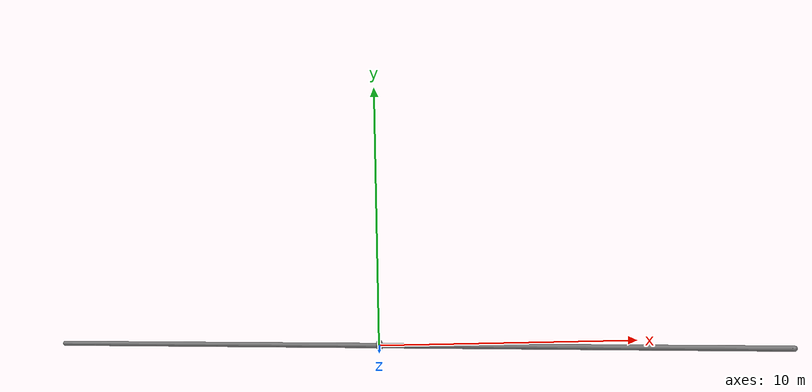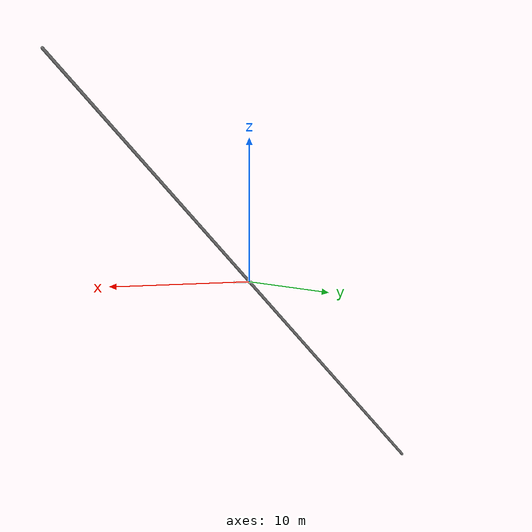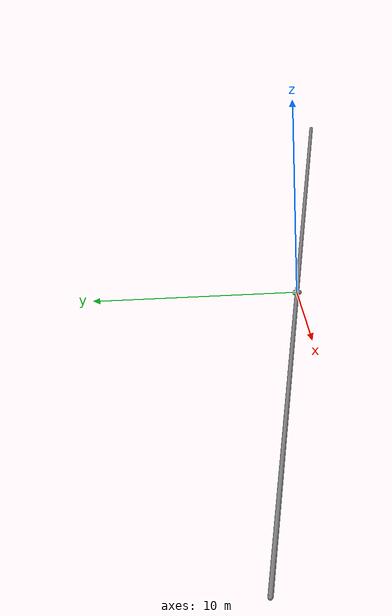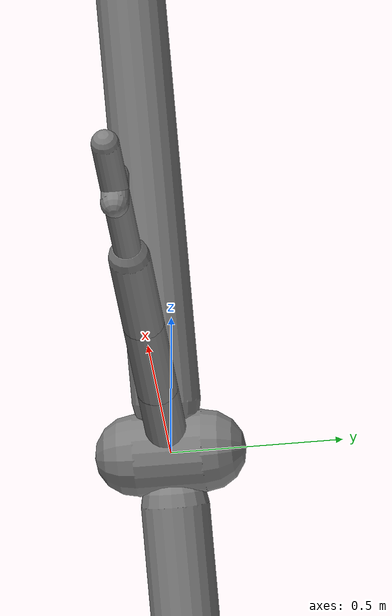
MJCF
<mujoco model="arm3d">
    <compiler inertiafromgeom="true" angle="radian" coordinate="local" />
    <option timestep="0.01" gravity="0 0 0" iterations="20" integrator="Euler" />

    <default>
        <joint armature='0.04' damping="1" limited="true"/>
        <geom friction=".8 .1 .1" density="300" margin="0.002" condim="1" contype="1" conaffinity="1"/>
    </default>

    <worldbody>
        <body name="palm" pos="0 0 0">
            <geom type="capsule" fromto="0 -0.1 0 0 0.1 0" size="0.12"/>

            <body name="proximal_1" pos="0 0 0">
                <joint name="proximal_j_1" type="hinge" pos="0 0 0" axis="0 1 0" range="-2.5236 2.3963" damping="1.0" />
                <geom type="capsule"  fromto="0 0 0 0.3 0 0" size="0.06" contype="1" conaffinity="1"/>
                <body name="distal_1" pos="0.3 0 0">
                    <joint name="distal_j_1" type="hinge" pos="0 0 0" axis="0 1 0" range="-2.3213 2.3" damping="1.0"/>
                    <geom type="capsule"  fromto="0 0 0 0.3 0 0" size="0.06" contype="1" conaffinity="1"/>
                    <body name="distal_2" pos="0.3 0 0">
                        <joint name="distal_j_2" type="hinge" pos="0 0 0" axis="0 1 0" range="-2.3213 2.3" damping="1.0"/>
                        <geom type="capsule" fromto="0 0 0 0.3 0 0" size="0.06" contype="1" conaffinity="1"/>
                        <body name="distal_3" pos="0.3 0 0">
                            <joint name="distal_j_3" type="hinge" pos="0 0 0" axis="0 1 0" range="-2.3213 2.3" damping="1.0"/>
                            <geom type="capsule" fromto="0 0 0 0.3 0 0" size="0.04" contype="1" conaffinity="1"/>
                            <body name="distal_4" pos="0.3 0 0">
                                <site name="tip arm" pos="0.1 0 0" size="0.01" />
                                <geom type="capsule" fromto="0 0 -0.05 0 0 0.05" size="0.04" density="1200" contype="1" conaffinity="1" />
                                <geom type="capsule" fromto="0 0 0. 0.2 0 0" size="0.04" density="600" contype="1" conaffinity="1" />
                            </body>
                        </body>
                    </body>
                </body>
            </body>
        </body>

        <body name="wall" pos="0 0. 0" xyaxes="0.5 0. 0.52 0 1 0">
            <geom type="capsule" fromto=" -20 0. 0 -.15 .0 0 " size="0.1" contype="1" conaffinity="1" />
            <geom type="capsule" fromto=" 20 0. 0 0.15 0 0 " size="0.1" contype="1" conaffinity="1" />
            <body name="goal" pos="0 0 0">
                <geom rgba="1. 0. 0. 1" type="box" size="0.05 0.05 0.05" density='0.00001' contype="0" conaffinity="0"/>
                <body name="distal_11" pos="0 0 0">
                    <site name="goal_pos" pos="0.0 0.0 0.0" size="0.01" />
                </body>
            </body>
        </body>
    </worldbody>

    <actuator>
        <motor joint="proximal_j_1" ctrlrange="-2 2" ctrllimited="true"/>
        <motor joint="distal_j_1" ctrlrange="-2 2" ctrllimited="true"/>
        <motor joint="distal_j_2" ctrlrange="-2 2" ctrllimited="true"/>
        <motor joint="distal_j_3" ctrlrange="-2 2" ctrllimited="true"/>
    </actuator>
</mujoco>
